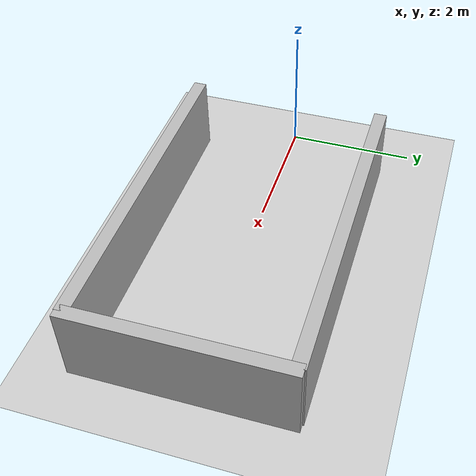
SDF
<?xml version="1.0"?>
<sdf version="1.6">
  <world name="v2-04g-r1-maneuver-s4935">
    <gravity>0 0 -9.81</gravity>
    <physics name="v2_deterministic" type="ode">
      <max_step_size>0.002</max_step_size>
      <real_time_update_rate>500</real_time_update_rate>
    </physics>
    <include>
      <uri>model://sun</uri>
    </include>
    <include>
      <uri>model://ground_plane</uri>
    </include>
    <model name="bay-left">
      <static>true</static>
      <pose>2.998704724 1.516029701 0.600000000 0 0 -0.000291013</pose>
      <link name="link">
        <collision name="collision">
          <geometry>
            <box>
              <size>5.000000 0.200000 1.200000</size>
            </box>
          </geometry>
        </collision>
        <visual name="visual">
          <geometry>
            <box>
              <size>5.000000 0.200000 1.200000</size>
            </box>
          </geometry>
        </visual>
      </link>
    </model>
    <model name="bay-right">
      <static>true</static>
      <pose>3.019328963 -1.519500286 0.600000000 0 0 0.001390640</pose>
      <link name="link">
        <collision name="collision">
          <geometry>
            <box>
              <size>5.000000 0.200000 1.200000</size>
            </box>
          </geometry>
        </collision>
        <visual name="visual">
          <geometry>
            <box>
              <size>5.000000 0.200000 1.200000</size>
            </box>
          </geometry>
        </visual>
      </link>
    </model>
    <model name="bay-back">
      <static>true</static>
      <pose>5.518408175 -0.005265764 0.600000000 0 0 0.004867153</pose>
      <link name="link">
        <collision name="collision">
          <geometry>
            <box>
              <size>0.200000 3.200000 1.200000</size>
            </box>
          </geometry>
        </collision>
        <visual name="visual">
          <geometry>
            <box>
              <size>0.200000 3.200000 1.200000</size>
            </box>
          </geometry>
        </visual>
      </link>
    </model>
  </world>
</sdf>
